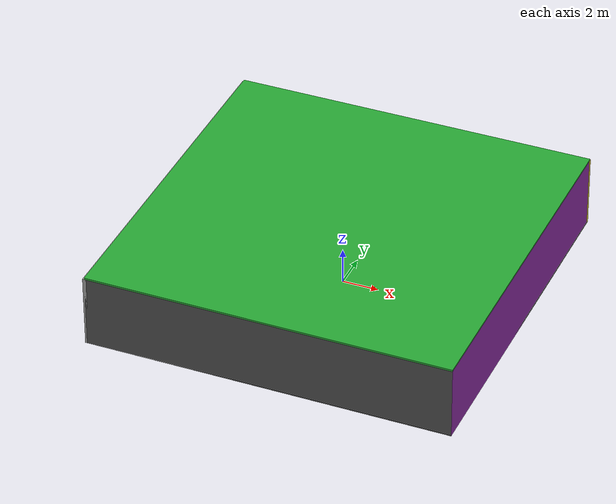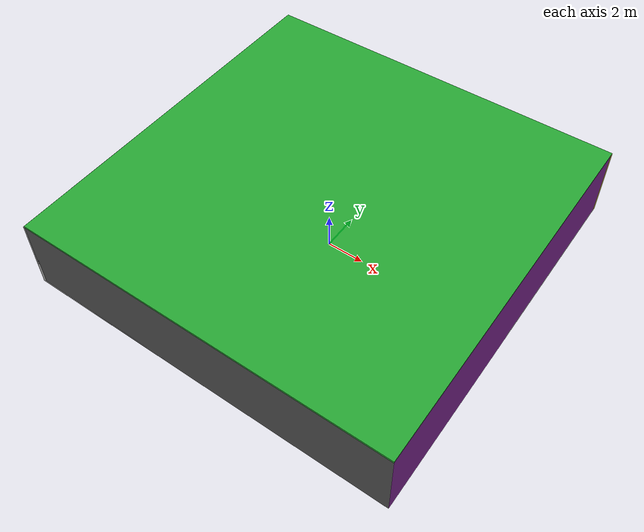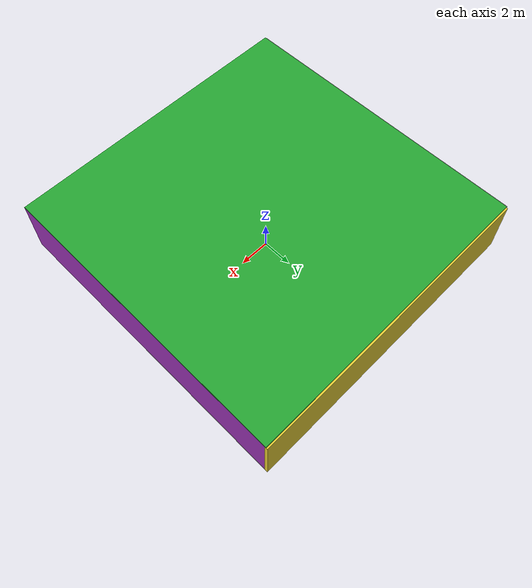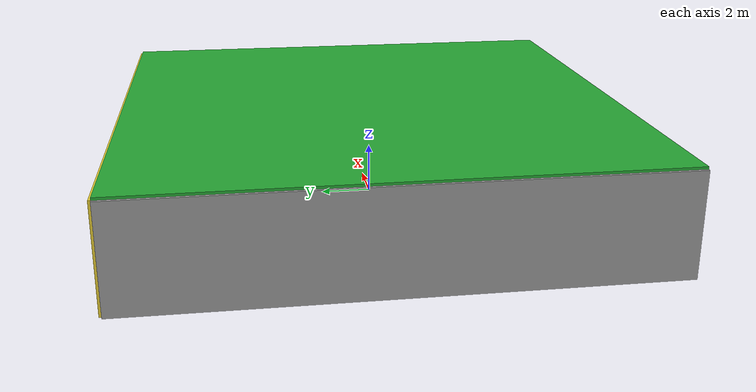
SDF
<sdf version="1.4">
 <world name="default">
  <physics type="ode">
   <max_step_size>0.001</max_step_size>
   <real_time_factor>1</real_time_factor>
   <real_time_update_rate>1000</real_time_update_rate>
   <gravity>0 0 -9.8</gravity>
  </physics>
  <scene><ambient>0.4 0.4 0.4 1</ambient><background>0.7 0.7 0.7 1</background><shadows>1</shadows></scene>
  <model name="Surrounding">
   <static>1</static>
   <link name="Ceiling">
    <collision name="Ceiling_Collision"><geometry><box><size>20 20 0.1</size></box></geometry></collision>
    <visual name="Ceiling_Visual">
     <geometry><box><size>20 20 0.1</size></box></geometry>
     <material>
      <script><uri>file://media/materials/scripts/gazebo.material</uri><name>Gazebo/Green</name></script>
     </material>
    </visual>
    <pose>0 0 4.05 0 0 0</pose>
   </link>
   <link name="Wall_South">
    <collision name="Wall_South_Collision">
     <geometry><box><size>20 0 4</size></box></geometry>
     <pose>0 0 2 0 -0 0</pose>
    </collision>
    <visual name="Wall_South_Visual">
     <pose>0 0 2 0 -0 0</pose>
     <geometry><box><size>20 0 4</size></box></geometry>
     <material>
      <script><uri>file://media/materials/scripts/gazebo.material</uri><name>Gazebo/DarkGrey</name></script>
     </material>
    </visual>
    <velocity_decay><linear>0</linear><angular>0</angular></velocity_decay>
    <pose>0 -10 0 0 -0 0</pose>
   </link>
   <link name="Wall_East">
    <collision name="Wall_21_Collision">
     <geometry><box><size>20 0 4</size></box></geometry>
     <pose>0 0 2 0 -0 0</pose>
    </collision>
    <visual name="Wall_21_Visual">
     <pose>0 0 2 0 -0 0</pose>
     <geometry><box><size>20 0 4</size></box></geometry>
     <material>
      <script><uri>file://media/materials/scripts/gazebo.material</uri><name>Gazebo/PurpleGlow</name></script>
     </material>
    </visual>
    <velocity_decay><linear>0</linear><angular>0</angular></velocity_decay>
    <pose>10 0 0 0 -0 1.5708</pose>
   </link>
   <link name="Wall_North">
    <collision name="Wall_22_Collision">
     <geometry><box><size>20 0.2 4</size></box></geometry>
     <pose>0 0 2 0 -0 0</pose>
    </collision>
    <visual name="Wall_22_Visual">
     <pose>0 0 2 0 -0 0</pose>
     <geometry><box><size>20 0.2 4</size></box></geometry>
     <material>
      <script><uri>file://media/materials/scripts/gazebo.material</uri><name>Gazebo/ZincYellow</name></script>
     </material>
    </visual>
    <velocity_decay><linear>0</linear><angular>0</angular></velocity_decay>
    <pose>0 10 0 0 -0 0</pose>
   </link>
   <link name="Wall_West">
    <collision name="Wall_23_Collision">
     <geometry><box><size>20 0.2 4</size></box></geometry>
     <pose>0 0 2 0 -0 0</pose>
    </collision>
    <visual name="Wall_23_Visual">
     <pose>0 0 2 0 -0 0</pose>
     <geometry><box><size>20 0.2 4</size></box></geometry>
     <material>
      <script><uri>file://media/materials/scripts/gazebo.material</uri><name>Gazebo/Grey</name></script>
     </material>
    </visual>
    <velocity_decay><linear>0</linear><angular>0</angular></velocity_decay>
    <pose>-10 0 0 0 0 -1.5708</pose>
   </link>
   <link name="Ground_link">
    <collision name="collision">
     <pose>0 0 .05 0 -0 0</pose>
     <geometry><box><size>20 20 0.1</size></box></geometry>
    </collision>
    <visual name="visual">
     <pose>0 0 .05 0 -0 0</pose>
     <geometry><box><size>20 20 0.1</size></box></geometry>
     <material>
      <script><uri>file://media/materials/scripts/gazebo.material</uri><name>Gazebo/Black</name></script>
     </material>
    </visual>
   </link>
   <static>1</static>
  </model>
  <spherical_coordinates>
   <surface_model>EARTH_WGS84</surface_model>
   <latitude_deg>0</latitude_deg>
   <longitude_deg>0</longitude_deg>
   <elevation>0</elevation>
   <heading_deg>0</heading_deg>
  </spherical_coordinates>
  <light name="lightball_0" type="diffuse">
   <diffuse>0.8 0.8 0.8 1</diffuse>
   <specular>0.2 0.2 0.2 1</specular>
   <attenuation>
    <range>100</range>
    <constant>0.7</constant>
    <linear>0.01</linear>
    <quadratic>0.001</quadratic>
   </attenuation>
   <direction>-0.5 0.1 -0.9</direction>
   <pose>6.24169607245 2.66104462147 2.99373191616 0 0 0</pose>
  </light>
  <light name="lightball_1" type="diffuse">
   <diffuse>0.8 0.8 0.8 1</diffuse>
   <specular>0.2 0.2 0.2 1</specular>
   <attenuation>
    <range>100</range>
    <constant>0.7</constant>
    <linear>0.01</linear>
    <quadratic>0.001</quadratic>
   </attenuation>
   <direction>-0.5 0.1 -0.9</direction>
   <pose>8.51988379543 -5.99124364203 3.59196343093 0 0 0</pose>
  </light>
  <include><uri>model://table</uri><pose>-6.89940683318 -6.84769462537 0 0 0 2.72860427381</pose></include>
  <include><uri>model://cabinet</uri><pose>-5.4514862707 6.79796671399 0 0 0 1.46548151597</pose></include>
  <include>
   <uri>model://robocup_3Dsim_goal</uri>
   <pose>-2.67163807335 0.622822971767 0 0 0 1.55413006638</pose>
  </include>
  <include><uri>model://table</uri><pose>-1.39033699407 7.74259367761 0 0 0 2.70547815117</pose></include>
  <include>
   <uri>model://construction_cone</uri>
   <pose>1.31926823364 -1.60175906051 0 0 0 1.9354666907</pose>
  </include>
  <include>
   <uri>model://construction_cone</uri>
   <pose>4.85735023423 -7.83790699909 0 0 0 1.36849395065</pose>
  </include>
  <include>
   <uri>model://construction_cone</uri>
   <pose>4.64220035699 -1.25226039311 0 0 0 0.679833870877</pose>
  </include>
  <include><uri>model://cabinet</uri><pose>3.49198140384 4.89883797648 0 0 0 2.00174612444</pose></include>
  <include><uri>model://cabinet</uri><pose>8.08983331766 2.47505135529 0 0 0 2.19054979879</pose></include>
  <include><uri>model://table</uri><pose>6.87751181208 8.3949337502 0 0 0 1.2431517817</pose></include>
 </world>
</sdf>

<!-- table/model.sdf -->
<sdf version="1.5">
  <model name="table">
    <static>true</static>
    <link name="link">
      <collision name="surface">
        <pose>0 0 1.0 0 0 0</pose>
        <geometry>
          <box>
            <size>1.5 0.8 0.03</size>
          </box>
        </geometry>
        <surface>
          <friction>
            <ode>
              <mu>0.6</mu>
              <mu2>0.6</mu2>
            </ode>
          </friction>
        </surface>
      </collision>
      <visual name="visual1">
        <pose>0 0 1.0 0 0 0</pose>
        <geometry>
          <box>
            <size>1.5 0.8 0.03</size>
          </box>
        </geometry>
        <material>
          <script>
            <uri>model://media/materials/scripts/gazebo.material</uri>
            <name>Gazebo/Wood</name>
          </script>
        </material>
      </visual>
      <collision name="front_left_leg">
        <pose>0.68 0.38 0.5 0 0 0</pose>
        <geometry>
          <cylinder>
            <radius>0.02</radius>
            <length>1.0</length>
          </cylinder>
        </geometry>
      </collision>
      <visual name="front_left_leg">
        <pose>0.68 0.38 0.5 0 0 0</pose>
        <geometry>
          <cylinder>
            <radius>0.02</radius>
            <length>1.0</length>
          </cylinder>
        </geometry>
        <material>
          <script>
            <uri>model://media/materials/scripts/gazebo.material</uri>
            <name>Gazebo/Grey</name>
          </script>
        </material>
      </visual>
      <collision name="front_right_leg">
        <pose>0.68 -0.38 0.5 0 0 0</pose>
        <geometry>
          <cylinder>
            <radius>0.02</radius>
            <length>1.0</length>
          </cylinder>
        </geometry>
      </collision>
      <visual name="front_right_leg">
        <pose>0.68 -0.38 0.5 0 0 0</pose>
        <geometry>
          <cylinder>
            <radius>0.02</radius>
            <length>1.0</length>
          </cylinder>
        </geometry>
        <material>
          <script>
            <uri>model://media/materials/scripts/gazebo.material</uri>
            <name>Gazebo/Grey</name>
          </script>
        </material>
      </visual>
      <collision name="back_right_leg">
        <pose>-0.68 -0.38 0.5 0 0 0</pose>
        <geometry>
          <cylinder>
            <radius>0.02</radius>
            <length>1.0</length>
          </cylinder>
        </geometry>
      </collision>
      <visual name="back_right_leg">
        <pose>-0.68 -0.38 0.5 0 0 0</pose>
        <geometry>
          <cylinder>
            <radius>0.02</radius>
            <length>1.0</length>
          </cylinder>
        </geometry>
        <material>
          <script>
            <uri>model://media/materials/scripts/gazebo.material</uri>
            <name>Gazebo/Grey</name>
          </script>
        </material>
      </visual>
      <collision name="back_left_leg">
        <pose>-0.68 0.38 0.5 0 0 0</pose>
        <geometry>
          <cylinder>
            <radius>0.02</radius>
            <length>1.0</length>
          </cylinder>
        </geometry>
      </collision>
      <visual name="back_left_leg">
        <pose>-0.68 0.38 0.5 0 0 0</pose>
        <geometry>
          <cylinder>
            <radius>0.02</radius>
            <length>1.0</length>
          </cylinder>
        </geometry>
        <material>
          <script>
            <uri>model://media/materials/scripts/gazebo.material</uri>
            <name>Gazebo/Grey</name>
          </script>
        </material>
      </visual>
    </link>
  </model>
</sdf>

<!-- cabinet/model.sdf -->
<sdf version="1.5">
  <model name="cabinet">
    <static>true</static>
    <link name="cabinet_bottom_plate">
      <inertial>
        <pose>0 0 -1 0 0 0</pose>
        <inertia>
          <ixx>2.050000</ixx>
          <ixy>0</ixy>
          <ixz>0</ixz>
          <iyy>2.050000</iyy>
          <iyz>0</iyz>
          <izz>2.050000</izz>
        </inertia>
        <mass>25.000000</mass>
      </inertial>
      <collision name="cabinet_bottom_plate_geom">
        <pose>0 0 0.010000 0 0 0</pose>
        <geometry>
          <box>
            <size>0.450000 0.450000 0.020000</size>
          </box>
        </geometry>
      </collision>
      <visual name="cabinet_bottom_plate_geom_visual">
        <pose>0 0 0.010000 0 0 0</pose>
        <geometry>
          <box>
            <size>0.450000 0.450000 0.020000</size>
          </box>
        </geometry>
        <material>
          <script>
            <uri>model://media/materials/scripts/gazebo.material</uri>
            <name>Gazebo/Wood</name>
          </script>
        </material>
      </visual>
      <collision name="cabinet_bottom_plate_geom_cabinet_back_plate">
        <pose>0.235000 0 0.510000 0 0 0</pose>
        <geometry>
          <box>
            <size>0.020000 0.450000 1.020000</size>
          </box>
        </geometry>
      </collision>
      <visual name="cabinet_bottom_plate_geom_cabinet_back_plate_visual">
        <pose>0.235000 0 0.510000 0 0 0</pose>
        <geometry>
          <box>
            <size>0.020000 0.450000 1.020000</size>
          </box>
        </geometry>
        <material>
          <script>
            <uri>model://media/materials/scripts/gazebo.material</uri>
            <name>Gazebo/Wood</name>
          </script>
        </material>
      </visual>
      <collision name="cabinet_bottom_plate_geom_cabinet_left_plate">
        <pose>0 0.235000 0.510000 0 0 0</pose>
        <geometry>
          <box>
            <size>0.450000 0.020000 1.020000</size>
          </box>
        </geometry>
      </collision>
      <visual name="cabinet_bottom_plate_geom_cabinet_left_plate_visual">
        <pose>0 0.235000 0.510000 0 0 0</pose>
        <geometry>
          <box>
            <size>0.450000 0.020000 1.020000</size>
          </box>
        </geometry>
        <material>
          <script>
            <uri>model://media/materials/scripts/gazebo.material</uri>
            <name>Gazebo/Wood</name>
          </script>
        </material>
      </visual>
      <collision name="cabinet_bottom_plate_geom_cabinet_middle_plate">
        <pose>0 0 0.510000 0 0 0</pose>
        <geometry>
          <box>
            <size>0.450000 0.450000 0.020000</size>
          </box>
        </geometry>
      </collision>
      <visual name="cabinet_bottom_plate_geom_cabinet_middle_plate_visual">
        <pose>0 0 0.510000 0 0 0</pose>
        <geometry>
          <box>
            <size>0.450000 0.450000 0.020000</size>
          </box>
        </geometry>
        <material>
          <script>
            <uri>model://media/materials/scripts/gazebo.material</uri>
            <name>Gazebo/Wood</name>
          </script>
        </material>
      </visual>
      <collision name="cabinet_bottom_plate_geom_cabinet_right_plate">
        <pose>0 -0.235000 0.510000 0 0 0</pose>
        <geometry>
          <box>
            <size>0.450000 0.020000 1.020000</size>
          </box>
        </geometry>
      </collision>
      <visual name="cabinet_bottom_plate_geom_cabinet_right_plate_visual">
        <pose>0 -0.235000 0.510000 0 0 0</pose>
        <geometry>
          <box>
            <size>0.450000 0.020000 1.020000</size>
          </box>
        </geometry>
        <material>
          <script>
            <uri>model://media/materials/scripts/gazebo.material</uri>
            <name>Gazebo/Wood</name>
          </script>
        </material>
      </visual>
      <collision name="cabinet_bottom_plate_geom_cabinet_top_plate">
        <pose>0 0 1.010000 0 0 0</pose>
        <geometry>
          <box>
            <size>0.450000 0.450000 0.020000</size>
          </box>
        </geometry>
      </collision>
      <visual name="cabinet_bottom_plate_geom_cabinet_top_plate_visual">
        <pose>0 0 1.010000 0 0 0</pose>
        <geometry>
          <box>
            <size>0.450000 0.450000 0.020000</size>
          </box>
        </geometry>
        <material>
          <script>
            <uri>model://media/materials/scripts/gazebo.material</uri>
            <name>Gazebo/Wood</name>
          </script>
        </material>
      </visual>
    </link>
  </model>
</sdf>

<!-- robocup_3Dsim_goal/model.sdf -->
<sdf version="1.5">
  <model name="robocup_3d_goal">
    <static>true</static>
    <link name="left_post">
      <pose>0 1.05 0.45 0 0 0</pose>
      <collision name="collision">
        <geometry>
          <cylinder>
            <radius>0.05</radius>
            <length>0.9</length>
          </cylinder>
        </geometry>
      </collision>
      <visual name="visual">
        <geometry>
          <cylinder>
            <radius>0.05</radius>
            <length>0.9</length>
          </cylinder>
        </geometry>
        <material>
          <script>
            <uri>file://media/materials/scripts/gazebo.material</uri>
            <name>Gazebo/ZincYellow</name>
          </script>
        </material>
      </visual>
    </link>
    <link name="left_support_horiz_lower">
      <pose>0.30 1.05 0.01 0 0 0</pose>
      <collision name="collision">
        <geometry>
          <box>
            <size>0.50 0.02 0.02</size>
          </box>
        </geometry>
      </collision>
      <visual name="visual">
        <geometry>
          <box>
            <size>0.50 0.02 0.02</size>
          </box>
        </geometry>
        <material>
          <script>
            <uri>file://media/materials/scripts/gazebo.material</uri>
            <name>Gazebo/White</name>
          </script>
        </material>
      </visual>
    </link>
    <link name="left_support_horiz_upper">
      <pose>0.30 1.05 0.79 0 0 0</pose>
      <collision name="collision">
        <geometry>
          <box>
            <size>0.50 0.02 0.02</size>
          </box>
        </geometry>
      </collision>
      <visual name="visual">
        <geometry>
          <box>
            <size>0.50 0.02 0.02</size>
          </box>
        </geometry>
        <material>
          <script>
            <uri>file://media/materials/scripts/gazebo.material</uri>
            <name>Gazebo/White</name>
          </script>
        </material>
      </visual>
    </link>
    <link name="left_support_vertical">
      <pose>0.56 1.05 0.4 0 1.5708 0</pose>
      <collision name="collision">
        <geometry>
          <box>
            <size>0.80 0.02 0.02</size>
          </box>
        </geometry>
      </collision>
      <visual name="visual">
        <geometry>
          <box>
            <size>0.80 0.02 0.02</size>
          </box>
        </geometry>
        <material>
          <script>
            <uri>file://media/materials/scripts/gazebo.material</uri>
            <name>Gazebo/White</name>
          </script>
        </material>
      </visual>
    </link>
    <link name="right_support_horiz_lower">
      <pose>0.30 -1.05 0.01 0 0 0</pose>
      <collision name="collision">
        <geometry>
          <box>
            <size>0.50 0.02 0.02</size>
          </box>
        </geometry>
      </collision>
      <visual name="visual">
        <geometry>
          <box>
            <size>0.50 0.02 0.02</size>
          </box>
        </geometry>
        <material>
          <script>
            <uri>file://media/materials/scripts/gazebo.material</uri>
            <name>Gazebo/White</name>
          </script>
        </material>
      </visual>
    </link>
    <link name="right_support_horiz_upper">
      <pose>0.30 -1.05 0.79 0 0 0</pose>
      <collision name="collision">
        <geometry>
          <box>
            <size>0.50 0.02 0.02</size>
          </box>
        </geometry>
      </collision>
      <visual name="visual">
        <geometry>
          <box>
            <size>0.50 0.02 0.02</size>
          </box>
        </geometry>
        <material>
          <script>
            <uri>file://media/materials/scripts/gazebo.material</uri>
            <name>Gazebo/White</name>
          </script>
        </material>
      </visual>
    </link>
    <link name="right_support_vertical">
      <pose>0.56 -1.05 0.4 0 1.5708 0</pose>
      <collision name="collision">
        <geometry>
          <box>
            <size>0.80 0.02 0.02</size>
          </box>
        </geometry>
      </collision>
      <visual name="visual">
        <geometry>
          <box>
            <size>0.80 0.02 0.02</size>
          </box>
        </geometry>
        <material>
          <script>
            <uri>file://media/materials/scripts/gazebo.material</uri>
            <name>Gazebo/White</name>
          </script>
        </material>
      </visual>
    </link>
    <link name="center_support_horiz_lower">
      <pose>0.56 0 0.01 0 1.5708 0</pose>
      <collision name="collision">
        <geometry>
          <box>
            <size>0.02 2.08 0.02</size>
          </box>
        </geometry>
      </collision>
      <visual name="visual">
        <geometry>
          <box>
            <size>0.02 2.08 0.02</size>
          </box>
        </geometry>
        <material>
          <script>
            <uri>file://media/materials/scripts/gazebo.material</uri>
            <name>Gazebo/White</name>
          </script>
        </material>
      </visual>
    </link>
    <link name="center_support_horiz_upper">
      <pose>0.56 0 0.79 0 1.5708 0</pose>
      <collision name="collision">
        <geometry>
          <box>
            <size>0.02 2.08 0.02</size>
          </box>
        </geometry>
      </collision>
      <visual name="visual">
        <geometry>
          <box>
            <size>0.02 2.08 0.02</size>
          </box>
        </geometry>
        <material>
          <script>
            <uri>file://media/materials/scripts/gazebo.material</uri>
            <name>Gazebo/White</name>
          </script>
        </material>
      </visual>
    </link>
    <link name="right_post">
      <pose>0 -1.05 0.45 0 0 0</pose>
      <collision name="collision">
        <geometry>
          <cylinder>
            <radius>0.05</radius>
            <length>0.9</length>
          </cylinder>
        </geometry>
      </collision>
      <visual name="visual">
        <geometry>
          <cylinder>
            <radius>0.05</radius>
            <length>0.9</length>
          </cylinder>
        </geometry>
        <material>
          <script>
            <uri>file://media/materials/scripts/gazebo.material</uri>
            <name>Gazebo/ZincYellow</name>
          </script>
        </material>
      </visual>
    </link>
    <link name="crossbar">
      <pose>0 0 0.85 1.57 1.57 0</pose>
      <collision name="collision">
        <geometry>
          <cylinder>
            <radius>0.05</radius>
            <length>2.0</length>
          </cylinder>
        </geometry>
      </collision>
      <visual name="visual">
        <geometry>
          <cylinder>
            <radius>0.05</radius>
            <length>2.0</length>
          </cylinder>
        </geometry>
        <material>
          <script>
            <uri>file://media/materials/scripts/gazebo.material</uri>
            <name>Gazebo/ZincYellow</name>
          </script>
        </material>
      </visual>
    </link>
    <link name="center_net">
      <pose>0.56 0 0.40 0 0 0</pose>
      <collision name="collision">
        <geometry>
          <box>
            <size>0.01 2.1 0.80</size>
          </box>
        </geometry>
      </collision>
      <visual name="visual">
        <geometry>
          <box>
            <size>0.01 2.1 0.80</size>
          </box>
        </geometry>
        <material>
          <script>
            <uri>model://../model_source/models/robocup09_spl_field/materials/scripts/</uri>
            <uri>model://../model_source/models/robocup09_spl_field/materials/textures/</uri>
            <name>RoboCup/Net</name>
          </script>
        </material>
      </visual>
    </link>
    <link name="left_net">
      <pose>0.30 1.05 0.40 0 0 0</pose>
      <collision name="collision">
        <geometry>
          <box>
            <size>0.50 0.01 0.76</size>
          </box>
        </geometry>
      </collision>
      <visual name="visual">
        <geometry>
          <box>
            <size>0.50 0.01 0.76</size>
          </box>
        </geometry>
        <material>
          <script>
            <uri>model://../model_source/models/robocup09_spl_field/materials/scripts/</uri>
            <uri>model://../model_source/models/robocup09_spl_field/materials/textures/</uri>
            <name>RoboCup/Net</name>
          </script>
        </material>
      </visual>
    </link>
    <link name="right_net">
      <pose>0.30 -1.05 0.40 0 0 0</pose>
      <collision name="collision">
        <geometry>
          <box>
            <size>0.50 0.01 0.76</size>
          </box>
        </geometry>
      </collision>
      <visual name="visual">
        <geometry>
          <box>
            <size>0.50 0.01 0.76</size>
          </box>
        </geometry>
        <material>
          <script>
            <uri>model://../model_source/models/robocup09_spl_field/materials/scripts/</uri>
            <uri>model://../model_source/models/robocup09_spl_field/materials/textures/</uri>
            <name>RoboCup/Net</name>
          </script>
        </material>
      </visual>
    </link>
  </model>
</sdf>

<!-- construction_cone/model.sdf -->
<sdf version="1.5">
  <model name="Construction Cone">
    <link name="link">
      <collision name="collision">
        <geometry>
          <mesh>
            <scale>10 10 10</scale>
            <uri>file://isr-testbed/construction_cone/meshes/construction_cone.dae</uri>
          </mesh>
        </geometry>
      </collision>
      <visual name="visual">
        <geometry>
          <mesh>
            <scale>10 10 10</scale>
            <uri>file://isr-testbed/construction_cone/meshes/construction_cone.dae</uri>
          </mesh>
        </geometry>
      </visual>
    </link>
  </model>
</sdf>
